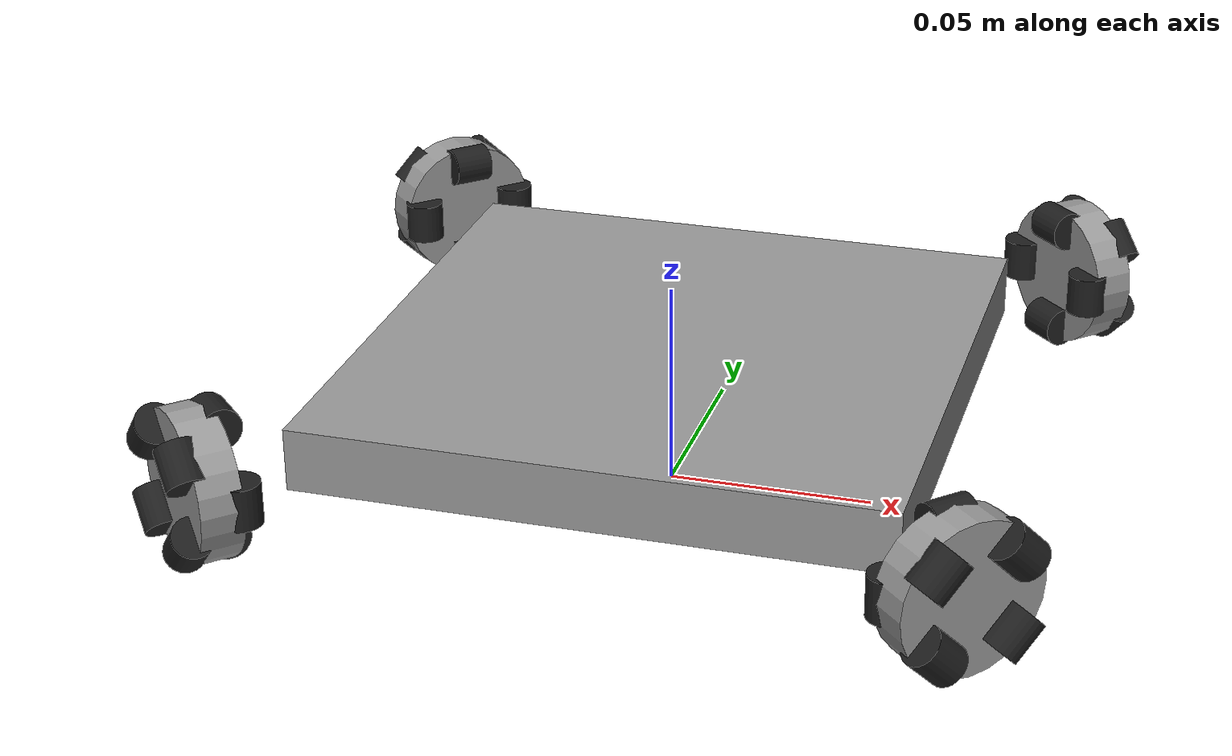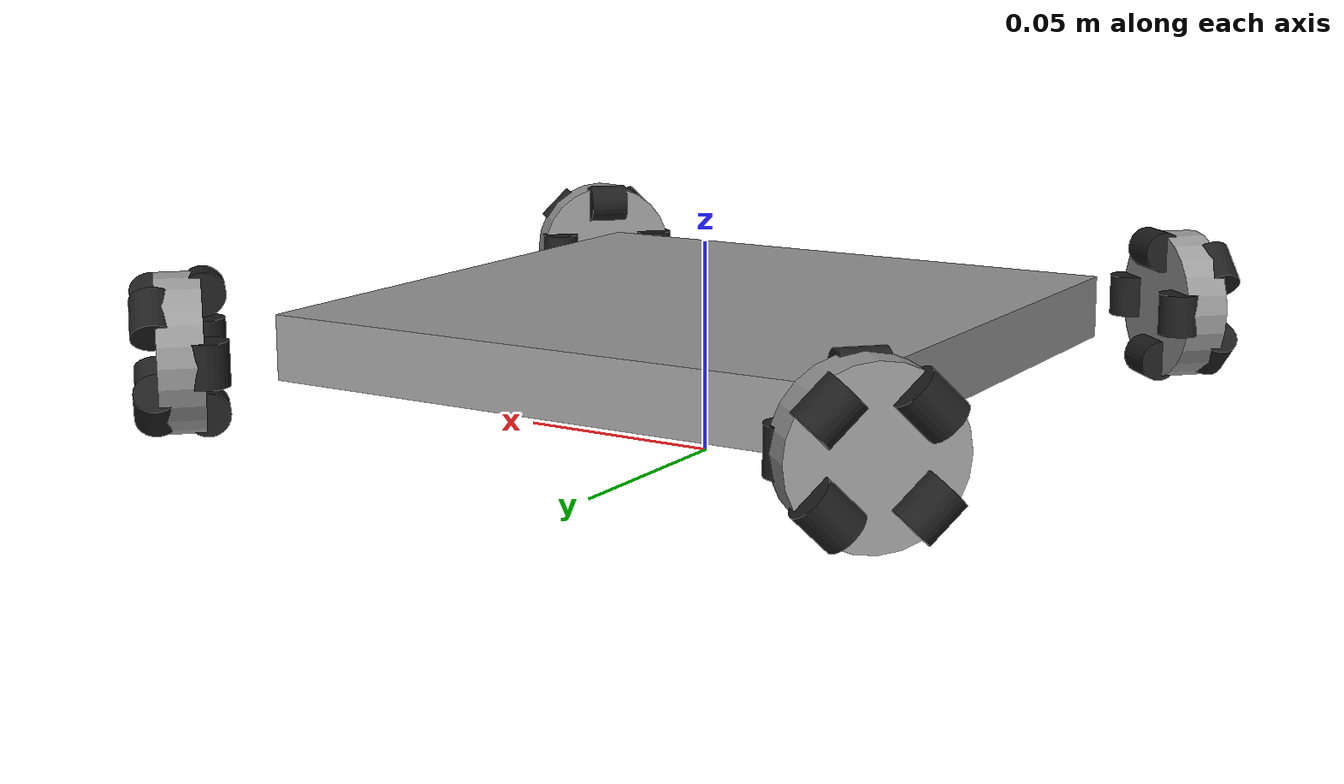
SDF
<?xml version="1.0" ?>
<!-- |    This document was autogenerated by xacro from /home/robostep/nav2-sample/src/OpenBase/openbase_gazebo_models/models/damped_omni4/model.sdf.xacro | -->
<!-- |    EDITING THIS FILE BY HAND IS NOT RECOMMENDED                                 | -->
<sdf version="1.6">
  <model name="damped_omni4_model">
    <pose>0 0 0.03 0 0 0</pose>
    <link name="body_link">
      <pose>0 0 0 0 0 0</pose>
      <inertial>
        <mass>0.07862944645</mass>
        <pose>0 0 0 0 0 0</pose>
        <inertia>
          <ixx>0.00018035985530754</ixx>
          <ixy>0</ixy>
          <ixz>0</ixz>
          <iyy>0.00018035985530754</iyy>
          <iyz>0</iyz>
          <izz>0.00018945961663220</izz>
        </inertia>
      </inertial>
      <visual name="visual">
        <pose>0 0 0 0 0 0</pose>
        <geometry>
          <box>
            <size>0.14 0.14 0.015</size>
          </box>
        </geometry>
        <material>
          <lighting>true</lighting>
          <script>
            <uri>file://media/materials/scripts/gazebo.material</uri>
            <name>Gazebo/Grey</name>
          </script>
          <ambient>1 1 1 1</ambient>
          <diffuse>0.7 0.7 0.7 1</diffuse>
          <specular>0.01 0.01 0.01 1</specular>
          <emissive>0 0 0 1</emissive>
          <shader type="vertex">
            <normal_map>__default__</normal_map>
          </shader>
        </material>
      </visual>
      <collision name="collision">
        <laser_retro>0</laser_retro>
        <max_contacts>10</max_contacts>
        <pose>0 0 0 0 0 0</pose>
        <geometry>
          <box>
            <size>0.14 0.14 0.015</size>
          </box>
        </geometry>
        <surface>
          <friction>
            <ode>
              <mu>1</mu>
              <mu2>1</mu2>
              <fdir1>0 0 0</fdir1>
              <slip1>0</slip1>
              <slip2>0</slip2>
            </ode>
            <torsional>
              <coefficient>1</coefficient>
              <patch_radius>0</patch_radius>
              <surface_radius>0</surface_radius>
              <use_patch_radius>true</use_patch_radius>
              <ode>
                <slip>0</slip>
              </ode>
            </torsional>
          </friction>
          <bounce>
            <restitution_coefficient>0</restitution_coefficient>
            <threshold>1e+06</threshold>
          </bounce>
          <contact>
            <collide_without_contact>false</collide_without_contact>
            <collide_bitmask>1</collide_bitmask>
            <ode>
              <soft_cfm>0</soft_cfm>
              <soft_erp>0.2</soft_erp>
              <kp>1e+13</kp>
              <kd>1</kd>
              <max_vel>0.01</max_vel>
              <min_depth>0</min_depth>
            </ode>
            <bullet>
              <split_impulse>true</split_impulse>
              <split_impulse_penetration_threshold>-0.01</split_impulse_penetration_threshold>
              <soft_cfm>0</soft_cfm>
              <soft_erp>0.2</soft_erp>
              <kp>1e+13</kp>
              <kd>1</kd>
            </bullet>
          </contact>
        </surface>
      </collision>
    </link>
    <include>
      <name>simple_omni_wheel_front_left_model</name>
      <uri>model://simple_omni_wheel</uri>
      <pose>0.08485281374238571 0.0848528137423857 0 0 0 0.7853981633974483</pose>
    </include>
    <include>
      <name>simple_omni_wheel_back_left_model</name>
      <uri>model://simple_omni_wheel</uri>
      <pose>-0.0848528137423857 0.08485281374238571 0 0 0 2.356194490192345</pose>
    </include>
    <include>
      <name>simple_omni_wheel_back_right_model</name>
      <uri>model://simple_omni_wheel</uri>
      <pose>-0.08485281374238572 -0.0848528137423857 0 0 0 3.9269908169872414</pose>
    </include>
    <include>
      <name>simple_omni_wheel_front_right_model</name>
      <uri>model://simple_omni_wheel</uri>
      <pose>0.08485281374238568 -0.08485281374238572 0 0 0 5.497787143782138</pose>
    </include>
    <joint name="front_left_linear_joint" type="prismatic">
      <parent>body_link</parent>
      <child>front_left_wheel_base_link</child>
      <axis>
        <limit>
          <lower>-0.004</lower>
          <upper>0.004</upper>
        </limit>
        <dynamics>
          <spring_reference>0.0</spring_reference>
          <spring_stiffness>300.0</spring_stiffness>
          <damping>0.2</damping>
        </dynamics>
        <xyz>0 0 1</xyz>
      </axis>
    </joint>
    <link name="front_left_wheel_base_link">
      <inertial>
        <mass>0.001</mass>
        <inertia>
          <ixx>0.00001</ixx>
          <ixy>0</ixy>
          <ixz>0</ixz>
          <iyy>0.00001</iyy>
          <iyz>0</iyz>
          <izz>0.00001</izz>
        </inertia>
      </inertial>
    </link>
    <joint name="front_left_rotational_joint" type="revolute">
      <parent>front_left_wheel_base_link</parent>
      <child>simple_omni_wheel_front_left_model::omni_wheel_rim_link</child>
      <pose>0 0 0 3.141592653589793 -1.5707963267948966 3.141592653589793</pose>
      <axis>
        <xyz>0 0 1</xyz>
        <use_parent_model_frame>0</use_parent_model_frame>
        <limit>
          <lower>-1.79769e+308</lower>
          <upper>1.79769e+308</upper>
          <effort>-1</effort>
          <velocity>-1</velocity>
        </limit>
        <dynamics>
          <spring_reference>0</spring_reference>
          <spring_stiffness>0</spring_stiffness>
          <damping>0</damping>
          <friction>0.0001</friction>
        </dynamics>
      </axis>
      <physics>
        <ode>
          <limit>
            <cfm>0</cfm>
            <erp>0.2</erp>
          </limit>
          <suspension>
            <cfm>0</cfm>
            <erp>0.2</erp>
          </suspension>
        </ode>
      </physics>
    </joint>
    <joint name="front_right_linear_joint" type="prismatic">
      <parent>body_link</parent>
      <child>front_right_wheel_base_link</child>
      <axis>
        <limit>
          <lower>-0.004</lower>
          <upper>0.004</upper>
        </limit>
        <dynamics>
          <spring_reference>0.0</spring_reference>
          <spring_stiffness>300.0</spring_stiffness>
          <damping>0.2</damping>
        </dynamics>
        <xyz>0 0 1</xyz>
      </axis>
    </joint>
    <link name="front_right_wheel_base_link">
      <inertial>
        <mass>0.001</mass>
        <inertia>
          <ixx>0.00001</ixx>
          <ixy>0</ixy>
          <ixz>0</ixz>
          <iyy>0.00001</iyy>
          <iyz>0</iyz>
          <izz>0.00001</izz>
        </inertia>
      </inertial>
    </link>
    <joint name="front_right_rotational_joint" type="revolute">
      <parent>front_right_wheel_base_link</parent>
      <child>simple_omni_wheel_front_right_model::omni_wheel_rim_link</child>
      <pose>0 0 0 3.141592653589793 -1.5707963267948966 3.141592653589793</pose>
      <axis>
        <xyz>0 0 1</xyz>
        <use_parent_model_frame>0</use_parent_model_frame>
        <limit>
          <lower>-1.79769e+308</lower>
          <upper>1.79769e+308</upper>
          <effort>-1</effort>
          <velocity>-1</velocity>
        </limit>
        <dynamics>
          <spring_reference>0</spring_reference>
          <spring_stiffness>0</spring_stiffness>
          <damping>0</damping>
          <friction>0.0001</friction>
        </dynamics>
      </axis>
      <physics>
        <ode>
          <limit>
            <cfm>0</cfm>
            <erp>0.2</erp>
          </limit>
          <suspension>
            <cfm>0</cfm>
            <erp>0.2</erp>
          </suspension>
        </ode>
      </physics>
    </joint>
    <joint name="back_left_linear_joint" type="prismatic">
      <parent>body_link</parent>
      <child>back_left_wheel_base_link</child>
      <axis>
        <limit>
          <lower>-0.004</lower>
          <upper>0.004</upper>
        </limit>
        <dynamics>
          <spring_reference>0.0</spring_reference>
          <spring_stiffness>300.0</spring_stiffness>
          <damping>0.2</damping>
        </dynamics>
        <xyz>0 0 1</xyz>
      </axis>
    </joint>
    <link name="back_left_wheel_base_link">
      <inertial>
        <mass>0.001</mass>
        <inertia>
          <ixx>0.00001</ixx>
          <ixy>0</ixy>
          <ixz>0</ixz>
          <iyy>0.00001</iyy>
          <iyz>0</iyz>
          <izz>0.00001</izz>
        </inertia>
      </inertial>
    </link>
    <joint name="back_left_rotational_joint" type="revolute">
      <parent>back_left_wheel_base_link</parent>
      <child>simple_omni_wheel_back_left_model::omni_wheel_rim_link</child>
      <pose>0 0 0 3.141592653589793 -1.5707963267948966 3.141592653589793</pose>
      <axis>
        <xyz>0 0 1</xyz>
        <use_parent_model_frame>0</use_parent_model_frame>
        <limit>
          <lower>-1.79769e+308</lower>
          <upper>1.79769e+308</upper>
          <effort>-1</effort>
          <velocity>-1</velocity>
        </limit>
        <dynamics>
          <spring_reference>0</spring_reference>
          <spring_stiffness>0</spring_stiffness>
          <damping>0</damping>
          <friction>0.0001</friction>
        </dynamics>
      </axis>
      <physics>
        <ode>
          <limit>
            <cfm>0</cfm>
            <erp>0.2</erp>
          </limit>
          <suspension>
            <cfm>0</cfm>
            <erp>0.2</erp>
          </suspension>
        </ode>
      </physics>
    </joint>
    <joint name="back_right_linear_joint" type="prismatic">
      <parent>body_link</parent>
      <child>back_right_wheel_base_link</child>
      <axis>
        <limit>
          <lower>-0.004</lower>
          <upper>0.004</upper>
        </limit>
        <dynamics>
          <spring_reference>0.0</spring_reference>
          <spring_stiffness>300.0</spring_stiffness>
          <damping>0.2</damping>
        </dynamics>
        <xyz>0 0 1</xyz>
      </axis>
    </joint>
    <link name="back_right_wheel_base_link">
      <inertial>
        <mass>0.001</mass>
        <inertia>
          <ixx>0.00001</ixx>
          <ixy>0</ixy>
          <ixz>0</ixz>
          <iyy>0.00001</iyy>
          <iyz>0</iyz>
          <izz>0.00001</izz>
        </inertia>
      </inertial>
    </link>
    <joint name="back_right_rotational_joint" type="revolute">
      <parent>back_right_wheel_base_link</parent>
      <child>simple_omni_wheel_back_right_model::omni_wheel_rim_link</child>
      <pose>0 0 0 3.141592653589793 -1.5707963267948966 3.141592653589793</pose>
      <axis>
        <xyz>0 0 1</xyz>
        <use_parent_model_frame>0</use_parent_model_frame>
        <limit>
          <lower>-1.79769e+308</lower>
          <upper>1.79769e+308</upper>
          <effort>-1</effort>
          <velocity>-1</velocity>
        </limit>
        <dynamics>
          <spring_reference>0</spring_reference>
          <spring_stiffness>0</spring_stiffness>
          <damping>0</damping>
          <friction>0.0001</friction>
        </dynamics>
      </axis>
      <physics>
        <ode>
          <limit>
            <cfm>0</cfm>
            <erp>0.2</erp>
          </limit>
          <suspension>
            <cfm>0</cfm>
            <erp>0.2</erp>
          </suspension>
        </ode>
      </physics>
    </joint>
    <plugin filename="libgazebo_ros_omni_drive.so" name="omni_drive">
      <joint>front_left_rotational_joint</joint>
      <joint>front_right_rotational_joint</joint>
      <joint>back_left_rotational_joint</joint>
      <joint>back_right_rotational_joint</joint>
      <wheel_radius>0.018</wheel_radius>
    </plugin>
  </model>
</sdf>

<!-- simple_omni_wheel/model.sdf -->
<!-- |    This document was autogenerated by xacro from /home/tm/nav2-sample/src/OpenBase/openbase_gazebo_models/models/simple_omni_wheel/model.sdf.xacro | -->
<!-- |    EDITING THIS FILE BY HAND IS NOT RECOMMENDED                                 | -->
<sdf version="1.7">
  <model name="simple_omni_wheel_model">
    <link name="omni_wheel_rim_link">
      <inertial>
        <pose>0 0 0 0 1.5707963267948966 0</pose>
        <mass>0.00835758</mass>
        <inertia>
          <ixx>6.63684e-07</ixx>
          <ixy>0</ixy>
          <ixz>0</ixz>
          <iyy>6.63684e-07</iyy>
          <iyz>0</iyz>
          <izz>9.40333e-07</izz>
        </inertia>
      </inertial>
      <visual name="visual">
        <pose>0 0 0 0 1.5707963267948966 0</pose>
        <geometry>
          <cylinder>
            <radius>0.018</radius>
            <length>0.01</length>
          </cylinder>
        </geometry>
        <material>
          <script>
            <uri>file://media/materials/scripts/gazebo.material</uri>
            <name>Gazebo/Grey</name>
          </script>
        </material>
      </visual>
      <collision name="collision">
        <pose>0 0 0 0 1.5707963267948966 0</pose>
        <geometry>
          <cylinder>
            <radius>0.018</radius>
            <length>0.01</length>
          </cylinder>
        </geometry>
        <surface>
          <friction>
            <ode>
              <mu>1</mu>
              <mu2>1</mu2>
              <fdir1>0 0 0</fdir1>
              <slip1>0</slip1>
              <slip2>0</slip2>
            </ode>
          </friction>
        </surface>
      </collision>
    </link>
    <link name="omni_wheel_roller_e_link">
      <pose>-0.0055 0.01355 0 0 -0 0</pose>
      <inertial>
        <mass>0.00313845</mass>
        <pose>0 0 0 0 0 0</pose>
        <inertia>
          <ixx>2.53776e-07</ixx>
          <ixy>0</ixy>
          <ixz>0</ixz>
          <iyy>2.53776e-07</iyy>
          <iyz>0</iyz>
          <izz>1.47666e-07</izz>
        </inertia>
      </inertial>
      <visual name="visual">
        <pose>0 0 0 0 0 0</pose>
        <geometry>
          <cylinder>
            <radius>0.0049</radius>
            <length>0.01</length>
          </cylinder>
        </geometry>
        <material>
          <script>
            <uri>file://media/materials/scripts/gazebo.material</uri>
            <name>Gazebo/Black</name>
          </script>
        </material>
      </visual>
      <collision name="collision">
        <pose>0 0 0 0 0 0</pose>
        <geometry>
          <cylinder>
            <radius>0.0049</radius>
            <length>0.01</length>
          </cylinder>
        </geometry>
        <surface>
          <friction>
            <ode>
              <mu>1</mu>
              <mu2>1</mu2>
              <fdir1>0 0 0</fdir1>
              <slip1>0</slip1>
              <slip2>0</slip2>
            </ode>
          </friction>
        </surface>
      </collision>
    </link>
    <link name="omni_wheel_roller_n_link">
      <pose>-0.0055 0 0.01355 1.5707963267948966 -0 0</pose>
      <inertial>
        <mass>0.00313845</mass>
        <pose>0 0 0 0 0 0</pose>
        <inertia>
          <ixx>2.53776e-07</ixx>
          <ixy>0</ixy>
          <ixz>0</ixz>
          <iyy>2.53776e-07</iyy>
          <iyz>0</iyz>
          <izz>1.47666e-07</izz>
        </inertia>
      </inertial>
      <visual name="visual">
        <pose>0 0 0 0 0 0</pose>
        <geometry>
          <cylinder>
            <radius>0.0049</radius>
            <length>0.01</length>
          </cylinder>
        </geometry>
        <material>
          <script>
            <uri>file://media/materials/scripts/gazebo.material</uri>
            <name>Gazebo/Black</name>
          </script>
        </material>
      </visual>
      <collision name="collision">
        <pose>0 0 0 0 0 0</pose>
        <geometry>
          <cylinder>
            <radius>0.0049</radius>
            <length>0.01</length>
          </cylinder>
        </geometry>
        <surface>
          <friction>
            <ode>
              <mu>1</mu>
              <mu2>1</mu2>
              <fdir1>0 0 0</fdir1>
              <slip1>0</slip1>
              <slip2>0</slip2>
            </ode>
          </friction>
        </surface>
      </collision>
    </link>
    <link name="omni_wheel_roller_w_link">
      <pose>-0.0055 -0.01355 0 -3.141592653589793 0 0</pose>
      <inertial>
        <mass>0.00313845</mass>
        <pose>0 0 0 0 0 0</pose>
        <inertia>
          <ixx>2.53776e-07</ixx>
          <ixy>0</ixy>
          <ixz>0</ixz>
          <iyy>2.53776e-07</iyy>
          <iyz>0</iyz>
          <izz>1.47666e-07</izz>
        </inertia>
      </inertial>
      <visual name="visual">
        <pose>0 0 0 0 0 0</pose>
        <geometry>
          <cylinder>
            <radius>0.0049</radius>
            <length>0.01</length>
          </cylinder>
        </geometry>
        <material>
          <script>
            <uri>file://media/materials/scripts/gazebo.material</uri>
            <name>Gazebo/Black</name>
          </script>
        </material>
      </visual>
      <collision name="collision">
        <pose>0 0 0 0 0 0</pose>
        <geometry>
          <cylinder>
            <radius>0.0049</radius>
            <length>0.01</length>
          </cylinder>
        </geometry>
        <surface>
          <friction>
            <ode>
              <mu>1</mu>
              <mu2>1</mu2>
              <fdir1>0 0 0</fdir1>
              <slip1>0</slip1>
              <slip2>0</slip2>
            </ode>
          </friction>
        </surface>
      </collision>
    </link>
    <link name="omni_wheel_roller_s_link">
      <pose>-0.0055 0 -0.01355 -1.5707963267948966 0 0</pose>
      <inertial>
        <mass>0.00313845</mass>
        <pose>0 0 0 0 0 0</pose>
        <inertia>
          <ixx>2.53776e-07</ixx>
          <ixy>0</ixy>
          <ixz>0</ixz>
          <iyy>2.53776e-07</iyy>
          <iyz>0</iyz>
          <izz>1.47666e-07</izz>
        </inertia>
      </inertial>
      <visual name="visual">
        <pose>0 0 0 0 0 0</pose>
        <geometry>
          <cylinder>
            <radius>0.0049</radius>
            <length>0.01</length>
          </cylinder>
        </geometry>
        <material>
          <script>
            <uri>file://media/materials/scripts/gazebo.material</uri>
            <name>Gazebo/Black</name>
          </script>
        </material>
      </visual>
      <collision name="collision">
        <pose>0 0 0 0 0 0</pose>
        <geometry>
          <cylinder>
            <radius>0.0049</radius>
            <length>0.01</length>
          </cylinder>
        </geometry>
        <surface>
          <friction>
            <ode>
              <mu>1</mu>
              <mu2>1</mu2>
              <fdir1>0 0 0</fdir1>
              <slip1>0</slip1>
              <slip2>0</slip2>
            </ode>
          </friction>
        </surface>
      </collision>
    </link>
    <link name="omni_wheel_roller_ne_link">
      <pose>0.0055 0.009581 0.009581 0.7853981633974483 -0 0</pose>
      <inertial>
        <mass>0.00313845</mass>
        <pose>0 0 0 0 0 0</pose>
        <inertia>
          <ixx>2.53776e-07</ixx>
          <ixy>0</ixy>
          <ixz>0</ixz>
          <iyy>2.53776e-07</iyy>
          <iyz>0</iyz>
          <izz>1.47666e-07</izz>
        </inertia>
      </inertial>
      <visual name="visual">
        <pose>0 0 0 0 0 0</pose>
        <geometry>
          <cylinder>
            <radius>0.0049</radius>
            <length>0.01</length>
          </cylinder>
        </geometry>
        <material>
          <script>
            <uri>file://media/materials/scripts/gazebo.material</uri>
            <name>Gazebo/Black</name>
          </script>
        </material>
      </visual>
      <collision name="collision">
        <pose>0 0 0 0 0 0</pose>
        <geometry>
          <cylinder>
            <radius>0.0049</radius>
            <length>0.01</length>
          </cylinder>
        </geometry>
        <surface>
          <friction>
            <ode>
              <mu>1</mu>
              <mu2>1</mu2>
              <fdir1>0 0 0</fdir1>
              <slip1>0</slip1>
              <slip2>0</slip2>
            </ode>
          </friction>
        </surface>
      </collision>
    </link>
    <link name="omni_wheel_roller_nw_link">
      <pose>0.0055 -0.009581 0.009581 2.356194490192345 -0 0</pose>
      <inertial>
        <mass>0.00313845</mass>
        <pose>0 0 0 0 0 0</pose>
        <inertia>
          <ixx>2.53776e-07</ixx>
          <ixy>0</ixy>
          <ixz>0</ixz>
          <iyy>2.53776e-07</iyy>
          <iyz>0</iyz>
          <izz>1.47666e-07</izz>
        </inertia>
      </inertial>
      <visual name="visual">
        <pose>0 0 0 0 0 0</pose>
        <geometry>
          <cylinder>
            <radius>0.0049</radius>
            <length>0.01</length>
          </cylinder>
        </geometry>
        <material>
          <script>
            <uri>file://media/materials/scripts/gazebo.material</uri>
            <name>Gazebo/Black</name>
          </script>
        </material>
      </visual>
      <collision name="collision">
        <pose>0 0 0 0 0 0</pose>
        <geometry>
          <cylinder>
            <radius>0.0049</radius>
            <length>0.01</length>
          </cylinder>
        </geometry>
        <surface>
          <friction>
            <ode>
              <mu>1</mu>
              <mu2>1</mu2>
              <fdir1>0 0 0</fdir1>
              <slip1>0</slip1>
              <slip2>0</slip2>
            </ode>
          </friction>
        </surface>
      </collision>
    </link>
    <link name="omni_wheel_roller_sw_link">
      <pose>0.0055 -0.009581 -0.009581 -2.356194490192345 0 0</pose>
      <inertial>
        <mass>0.00313845</mass>
        <pose>0 0 0 0 0 0</pose>
        <inertia>
          <ixx>2.53776e-07</ixx>
          <ixy>0</ixy>
          <ixz>0</ixz>
          <iyy>2.53776e-07</iyy>
          <iyz>0</iyz>
          <izz>1.47666e-07</izz>
        </inertia>
      </inertial>
      <visual name="visual">
        <pose>0 0 0 0 0 0</pose>
        <geometry>
          <cylinder>
            <radius>0.0049</radius>
            <length>0.01</length>
          </cylinder>
        </geometry>
        <material>
          <script>
            <uri>file://media/materials/scripts/gazebo.material</uri>
            <name>Gazebo/Black</name>
          </script>
        </material>
      </visual>
      <collision name="collision">
        <pose>0 0 0 0 0 0</pose>
        <geometry>
          <cylinder>
            <radius>0.0049</radius>
            <length>0.01</length>
          </cylinder>
        </geometry>
        <surface>
          <friction>
            <ode>
              <mu>1</mu>
              <mu2>1</mu2>
              <fdir1>0 0 0</fdir1>
              <slip1>0</slip1>
              <slip2>0</slip2>
            </ode>
          </friction>
        </surface>
      </collision>
    </link>
    <link name="omni_wheel_roller_se_link">
      <pose>0.0055 0.009581 -0.009581 -0.7853981633974483 0 0</pose>
      <inertial>
        <mass>0.00313845</mass>
        <pose>0 0 0 0 0 0</pose>
        <inertia>
          <ixx>2.53776e-07</ixx>
          <ixy>0</ixy>
          <ixz>0</ixz>
          <iyy>2.53776e-07</iyy>
          <iyz>0</iyz>
          <izz>1.47666e-07</izz>
        </inertia>
      </inertial>
      <visual name="visual">
        <pose>0 0 0 0 0 0</pose>
        <geometry>
          <cylinder>
            <radius>0.0049</radius>
            <length>0.01</length>
          </cylinder>
        </geometry>
        <material>
          <script>
            <uri>file://media/materials/scripts/gazebo.material</uri>
            <name>Gazebo/Black</name>
          </script>
        </material>
      </visual>
      <collision name="collision">
        <pose>0 0 0 0 0 0</pose>
        <geometry>
          <cylinder>
            <radius>0.0049</radius>
            <length>0.01</length>
          </cylinder>
        </geometry>
        <surface>
          <friction>
            <ode>
              <mu>1</mu>
              <mu2>1</mu2>
              <fdir1>0 0 0</fdir1>
              <slip1>0</slip1>
              <slip2>0</slip2>
            </ode>
          </friction>
        </surface>
      </collision>
    </link>
    <joint name="omni_wheel_s_joint" type="revolute">
      <parent>omni_wheel_rim_link</parent>
      <child>omni_wheel_roller_s_link</child>
      <pose>0 0 0 0 0 1.5707963267948966</pose>
      <axis>
        <xyz>0 0 1</xyz>
        <dynamics>
          <spring_reference>0</spring_reference>
          <spring_stiffness>0</spring_stiffness>
          <damping>0</damping>
          <friction>0.001</friction>
        </dynamics>
      </axis>
    </joint>
    <joint name="omni_wheel_se_joint" type="revolute">
      <parent>omni_wheel_rim_link</parent>
      <child>omni_wheel_roller_se_link</child>
      <pose>0 0 0 0 0 1.5707963267948966</pose>
      <axis>
        <xyz>0 0 1</xyz>
        <dynamics>
          <spring_reference>0</spring_reference>
          <spring_stiffness>0</spring_stiffness>
          <damping>0</damping>
          <friction>0.001</friction>
        </dynamics>
      </axis>
    </joint>
    <joint name="omni_wheel_e_joint" type="revolute">
      <parent>omni_wheel_rim_link</parent>
      <child>omni_wheel_roller_e_link</child>
      <pose>0 0 0 0 0 1.5707963267948966</pose>
      <axis>
        <xyz>0 0 1</xyz>
        <dynamics>
          <spring_reference>0</spring_reference>
          <spring_stiffness>0</spring_stiffness>
          <damping>0</damping>
          <friction>0.001</friction>
        </dynamics>
      </axis>
    </joint>
    <joint name="omni_wheel_ne_joint" type="revolute">
      <parent>omni_wheel_rim_link</parent>
      <child>omni_wheel_roller_ne_link</child>
      <pose>0 0 0 0 0 1.5707963267948966</pose>
      <axis>
        <xyz>0 0 1</xyz>
        <dynamics>
          <spring_reference>0</spring_reference>
          <spring_stiffness>0</spring_stiffness>
          <damping>0</damping>
          <friction>0.001</friction>
        </dynamics>
      </axis>
    </joint>
    <joint name="omni_wheel_n_joint" type="revolute">
      <parent>omni_wheel_rim_link</parent>
      <child>omni_wheel_roller_n_link</child>
      <pose>0 0 0 0 0 1.5707963267948966</pose>
      <axis>
        <xyz>0 0 1</xyz>
        <dynamics>
          <spring_reference>0</spring_reference>
          <spring_stiffness>0</spring_stiffness>
          <damping>0</damping>
          <friction>0.001</friction>
        </dynamics>
      </axis>
    </joint>
    <joint name="omni_wheel_nw_joint" type="revolute">
      <parent>omni_wheel_rim_link</parent>
      <child>omni_wheel_roller_nw_link</child>
      <pose>0 0 0 0 0 1.5707963267948966</pose>
      <axis>
        <xyz>0 0 1</xyz>
        <dynamics>
          <spring_reference>0</spring_reference>
          <spring_stiffness>0</spring_stiffness>
          <damping>0</damping>
          <friction>0.001</friction>
        </dynamics>
      </axis>
    </joint>
    <joint name="omni_wheel_w_joint" type="revolute">
      <parent>omni_wheel_rim_link</parent>
      <child>omni_wheel_roller_w_link</child>
      <pose>0 0 0 0 0 1.5707963267948966</pose>
      <axis>
        <xyz>0 0 1</xyz>
        <dynamics>
          <spring_reference>0</spring_reference>
          <spring_stiffness>0</spring_stiffness>
          <damping>0</damping>
          <friction>0.001</friction>
        </dynamics>
      </axis>
    </joint>
    <joint name="omni_wheel_sw_joint" type="revolute">
      <parent>omni_wheel_rim_link</parent>
      <child>omni_wheel_roller_sw_link</child>
      <pose>0 0 0 0 0 1.5707963267948966</pose>
      <axis>
        <xyz>0 0 1</xyz>
        <dynamics>
          <spring_reference>0</spring_reference>
          <spring_stiffness>0</spring_stiffness>
          <damping>0</damping>
          <friction>0.001</friction>
        </dynamics>
      </axis>
    </joint>
  </model>
</sdf>
